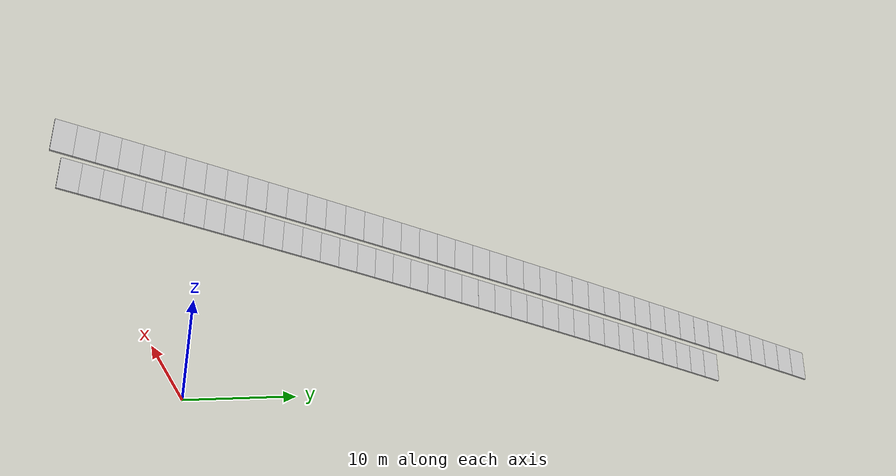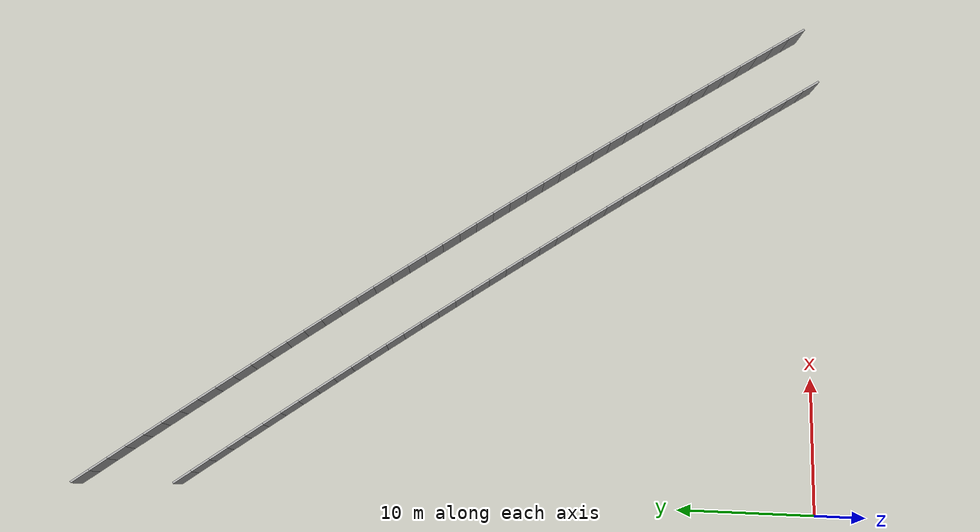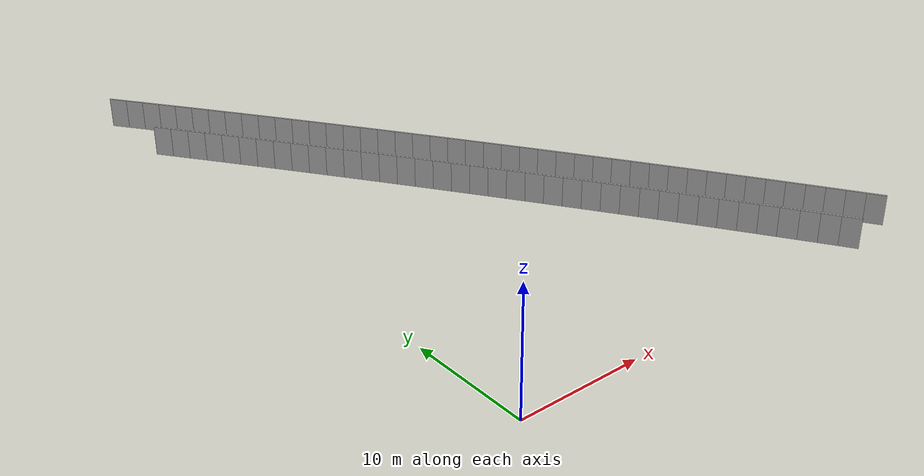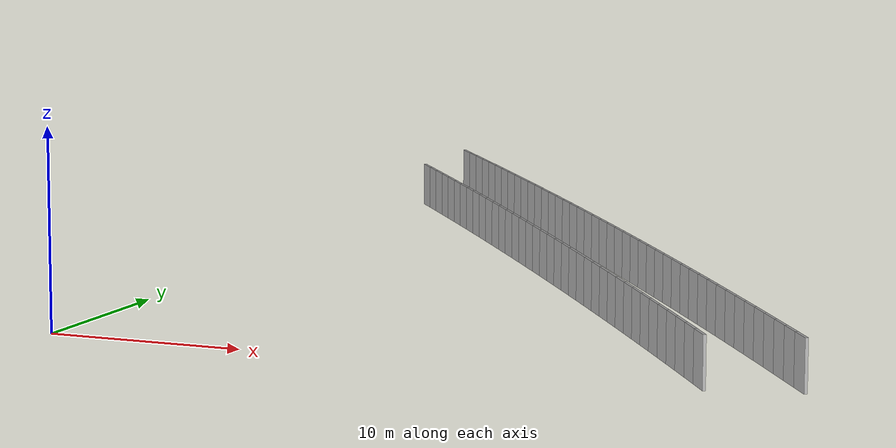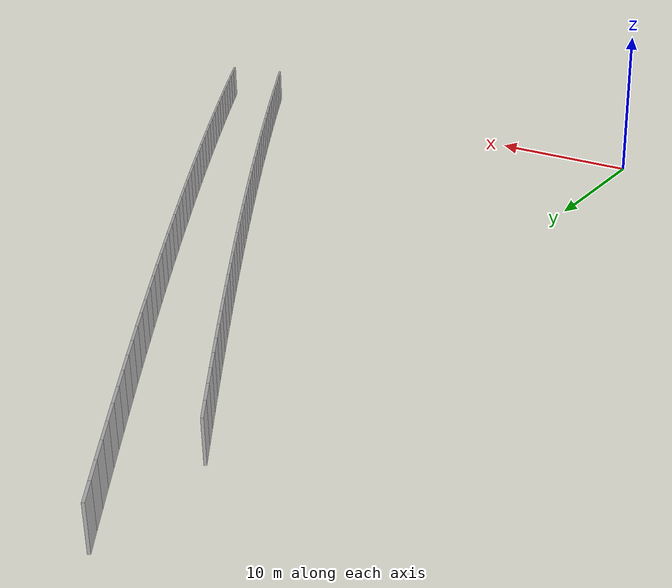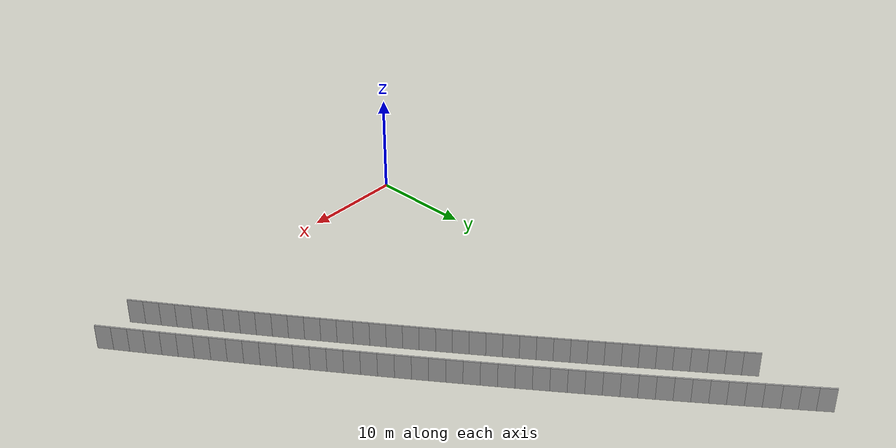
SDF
<?xml version="1.0" ?>
<sdf version="1.6">
  <model name="sps_2119">
    <pose frame="">0 0 0 0 -0 0</pose>
    <static>1</static>
    <self_collide>0</self_collide>
    <allow_auto_disable>0</allow_auto_disable>
    <link name="Wall10325">
      <kinematic>0</kinematic>
      <gravity>1</gravity>
      <self_collide>0</self_collide>
      <collision name="collision">
        <geometry>
          <box>
            <size>1.49652 0.15 2.5</size>
          </box>
        </geometry>
        <pose frame="">0 0 0 0 -0 0</pose>
      </collision>
      <visual name="visual">
        <geometry>
          <box>
            <size>1.49652 0.15 2.5</size>
          </box>
        </geometry>
        <pose frame="">0 0 0 0 -0 0</pose>
        <cast_shadows>1</cast_shadows>
        <transparency>0.0</transparency>
      </visual>
      <pose frame="">32.3198 0.0690145 1.25 0 -0 2.14588</pose>
    </link>
    <link name="Wall10326">
      <kinematic>0</kinematic>
      <gravity>1</gravity>
      <self_collide>0</self_collide>
      <collision name="collision">
        <geometry>
          <box>
            <size>1.49657 0.15 2.5</size>
          </box>
        </geometry>
        <pose frame="">0 0 0 0 -0 0</pose>
      </collision>
      <visual name="visual">
        <geometry>
          <box>
            <size>1.49657 0.15 2.5</size>
          </box>
        </geometry>
        <pose frame="">0 0 0 0 -0 0</pose>
        <cast_shadows>1</cast_shadows>
        <transparency>0.0</transparency>
      </visual>
      <pose frame="">31.5048 1.32411 1.25 0 -0 2.14766</pose>
    </link>
    <link name="Wall10327">
      <kinematic>0</kinematic>
      <gravity>1</gravity>
      <self_collide>0</self_collide>
      <collision name="collision">
        <geometry>
          <box>
            <size>1.49646 0.15 2.5</size>
          </box>
        </geometry>
        <pose frame="">0 0 0 0 -0 0</pose>
      </collision>
      <visual name="visual">
        <geometry>
          <box>
            <size>1.49646 0.15 2.5</size>
          </box>
        </geometry>
        <pose frame="">0 0 0 0 -0 0</pose>
        <cast_shadows>1</cast_shadows>
        <transparency>0.0</transparency>
      </visual>
      <pose frame="">30.6876 2.5778 1.25 0 -0 2.14926</pose>
    </link>
    <link name="Wall10328">
      <kinematic>0</kinematic>
      <gravity>1</gravity>
      <self_collide>0</self_collide>
      <collision name="collision">
        <geometry>
          <box>
            <size>1.49644 0.15 2.5</size>
          </box>
        </geometry>
        <pose frame="">0 0 0 0 -0 0</pose>
      </collision>
      <visual name="visual">
        <geometry>
          <box>
            <size>1.49644 0.15 2.5</size>
          </box>
        </geometry>
        <pose frame="">0 0 0 0 -0 0</pose>
        <cast_shadows>1</cast_shadows>
        <transparency>0.0</transparency>
      </visual>
      <pose frame="">29.8685 3.83018 1.25 0 -0 2.15073</pose>
    </link>
    <link name="Wall10329">
      <kinematic>0</kinematic>
      <gravity>1</gravity>
      <self_collide>0</self_collide>
      <collision name="collision">
        <geometry>
          <box>
            <size>1.49658 0.15 2.5</size>
          </box>
        </geometry>
        <pose frame="">0 0 0 0 -0 0</pose>
      </collision>
      <visual name="visual">
        <geometry>
          <box>
            <size>1.49658 0.15 2.5</size>
          </box>
        </geometry>
        <pose frame="">0 0 0 0 -0 0</pose>
        <cast_shadows>1</cast_shadows>
        <transparency>0.0</transparency>
      </visual>
      <pose frame="">29.0474 5.08137 1.25 0 -0 2.15228</pose>
    </link>
    <link name="Wall10330">
      <kinematic>0</kinematic>
      <gravity>1</gravity>
      <self_collide>0</self_collide>
      <collision name="collision">
        <geometry>
          <box>
            <size>1.49648 0.15 2.5</size>
          </box>
        </geometry>
        <pose frame="">0 0 0 0 -0 0</pose>
      </collision>
      <visual name="visual">
        <geometry>
          <box>
            <size>1.49648 0.15 2.5</size>
          </box>
        </geometry>
        <pose frame="">0 0 0 0 -0 0</pose>
        <cast_shadows>1</cast_shadows>
        <transparency>0.0</transparency>
      </visual>
      <pose frame="">28.2244 6.33128 1.25 0 -0 2.15389</pose>
    </link>
    <link name="Wall10331">
      <kinematic>0</kinematic>
      <gravity>1</gravity>
      <self_collide>0</self_collide>
      <collision name="collision">
        <geometry>
          <box>
            <size>1.49655 0.15 2.5</size>
          </box>
        </geometry>
        <pose frame="">0 0 0 0 -0 0</pose>
      </collision>
      <visual name="visual">
        <geometry>
          <box>
            <size>1.49655 0.15 2.5</size>
          </box>
        </geometry>
        <pose frame="">0 0 0 0 -0 0</pose>
        <cast_shadows>1</cast_shadows>
        <transparency>0.0</transparency>
      </visual>
      <pose frame="">27.3993 7.57979 1.25 0 -0 2.15567</pose>
    </link>
    <link name="Wall10332">
      <kinematic>0</kinematic>
      <gravity>1</gravity>
      <self_collide>0</self_collide>
      <collision name="collision">
        <geometry>
          <box>
            <size>1.49651 0.15 2.5</size>
          </box>
        </geometry>
        <pose frame="">0 0 0 0 -0 0</pose>
      </collision>
      <visual name="visual">
        <geometry>
          <box>
            <size>1.49651 0.15 2.5</size>
          </box>
        </geometry>
        <pose frame="">0 0 0 0 -0 0</pose>
        <cast_shadows>1</cast_shadows>
        <transparency>0.0</transparency>
      </visual>
      <pose frame="">26.5722 8.82698 1.25 0 -0 2.1571</pose>
    </link>
    <link name="Wall10333">
      <kinematic>0</kinematic>
      <gravity>1</gravity>
      <self_collide>0</self_collide>
      <collision name="collision">
        <geometry>
          <box>
            <size>1.49648 0.15 2.5</size>
          </box>
        </geometry>
        <pose frame="">0 0 0 0 -0 0</pose>
      </collision>
      <visual name="visual">
        <geometry>
          <box>
            <size>1.49648 0.15 2.5</size>
          </box>
        </geometry>
        <pose frame="">0 0 0 0 -0 0</pose>
        <cast_shadows>1</cast_shadows>
        <transparency>0.0</transparency>
      </visual>
      <pose frame="">25.7432 10.0729 1.25 0 -0 2.15869</pose>
    </link>
    <link name="Wall10334">
      <kinematic>0</kinematic>
      <gravity>1</gravity>
      <self_collide>0</self_collide>
      <collision name="collision">
        <geometry>
          <box>
            <size>1.49656 0.15 2.5</size>
          </box>
        </geometry>
        <pose frame="">0 0 0 0 -0 0</pose>
      </collision>
      <visual name="visual">
        <geometry>
          <box>
            <size>1.49656 0.15 2.5</size>
          </box>
        </geometry>
        <pose frame="">0 0 0 0 -0 0</pose>
        <cast_shadows>1</cast_shadows>
        <transparency>0.0</transparency>
      </visual>
      <pose frame="">24.9123 11.3175 1.25 0 -0 2.16031</pose>
    </link>
    <link name="Wall10335">
      <kinematic>0</kinematic>
      <gravity>1</gravity>
      <self_collide>0</self_collide>
      <collision name="collision">
        <geometry>
          <box>
            <size>1.49628 0.15 2.5</size>
          </box>
        </geometry>
        <pose frame="">0 0 0 0 -0 0</pose>
      </collision>
      <visual name="visual">
        <geometry>
          <box>
            <size>1.49628 0.15 2.5</size>
          </box>
        </geometry>
        <pose frame="">0 0 0 0 -0 0</pose>
        <cast_shadows>1</cast_shadows>
        <transparency>0.0</transparency>
      </visual>
      <pose frame="">24.0793 12.5607 1.25 0 -0 2.16186</pose>
    </link>
    <link name="Wall10336">
      <kinematic>0</kinematic>
      <gravity>1</gravity>
      <self_collide>0</self_collide>
      <collision name="collision">
        <geometry>
          <box>
            <size>1.49665 0.15 2.5</size>
          </box>
        </geometry>
        <pose frame="">0 0 0 0 -0 0</pose>
      </collision>
      <visual name="visual">
        <geometry>
          <box>
            <size>1.49665 0.15 2.5</size>
          </box>
        </geometry>
        <pose frame="">0 0 0 0 -0 0</pose>
        <cast_shadows>1</cast_shadows>
        <transparency>0.0</transparency>
      </visual>
      <pose frame="">23.2444 13.8026 1.25 0 -0 2.16347</pose>
    </link>
    <link name="Wall10337">
      <kinematic>0</kinematic>
      <gravity>1</gravity>
      <self_collide>0</self_collide>
      <collision name="collision">
        <geometry>
          <box>
            <size>1.49606 0.15 2.5</size>
          </box>
        </geometry>
        <pose frame="">0 0 0 0 -0 0</pose>
      </collision>
      <visual name="visual">
        <geometry>
          <box>
            <size>1.49606 0.15 2.5</size>
          </box>
        </geometry>
        <pose frame="">0 0 0 0 -0 0</pose>
        <cast_shadows>1</cast_shadows>
        <transparency>0.0</transparency>
      </visual>
      <pose frame="">22.4073 15.0429 1.25 0 -0 2.16551</pose>
    </link>
    <link name="Wall10338">
      <kinematic>0</kinematic>
      <gravity>1</gravity>
      <self_collide>0</self_collide>
      <collision name="collision">
        <geometry>
          <box>
            <size>1.49644 0.15 2.5</size>
          </box>
        </geometry>
        <pose frame="">0 0 0 0 -0 0</pose>
      </collision>
      <visual name="visual">
        <geometry>
          <box>
            <size>1.49644 0.15 2.5</size>
          </box>
        </geometry>
        <pose frame="">0 0 0 0 -0 0</pose>
        <cast_shadows>1</cast_shadows>
        <transparency>0.0</transparency>
      </visual>
      <pose frame="">21.5684 16.2818 1.25 0 -0 2.16662</pose>
    </link>
    <link name="Wall10339">
      <kinematic>0</kinematic>
      <gravity>1</gravity>
      <self_collide>0</self_collide>
      <collision name="collision">
        <geometry>
          <box>
            <size>1.49671 0.15 2.5</size>
          </box>
        </geometry>
        <pose frame="">0 0 0 0 -0 0</pose>
      </collision>
      <visual name="visual">
        <geometry>
          <box>
            <size>1.49671 0.15 2.5</size>
          </box>
        </geometry>
        <pose frame="">0 0 0 0 -0 0</pose>
        <cast_shadows>1</cast_shadows>
        <transparency>0.0</transparency>
      </visual>
      <pose frame="">20.7275 17.5198 1.25 0 -0 2.16827</pose>
    </link>
    <link name="Wall10340">
      <kinematic>0</kinematic>
      <gravity>1</gravity>
      <self_collide>0</self_collide>
      <collision name="collision">
        <geometry>
          <box>
            <size>1.49654 0.15 2.5</size>
          </box>
        </geometry>
        <pose frame="">0 0 0 0 -0 0</pose>
      </collision>
      <visual name="visual">
        <geometry>
          <box>
            <size>1.49654 0.15 2.5</size>
          </box>
        </geometry>
        <pose frame="">0 0 0 0 -0 0</pose>
        <cast_shadows>1</cast_shadows>
        <transparency>0.0</transparency>
      </visual>
      <pose frame="">19.8846 18.7565 1.25 0 -0 2.16983</pose>
    </link>
    <link name="Wall10341">
      <kinematic>0</kinematic>
      <gravity>1</gravity>
      <self_collide>0</self_collide>
      <collision name="collision">
        <geometry>
          <box>
            <size>1.49656 0.15 2.5</size>
          </box>
        </geometry>
        <pose frame="">0 0 0 0 -0 0</pose>
      </collision>
      <visual name="visual">
        <geometry>
          <box>
            <size>1.49656 0.15 2.5</size>
          </box>
        </geometry>
        <pose frame="">0 0 0 0 -0 0</pose>
        <cast_shadows>1</cast_shadows>
        <transparency>0.0</transparency>
      </visual>
      <pose frame="">19.0398 19.9918 1.25 0 -0 2.17145</pose>
    </link>
    <link name="Wall10342">
      <kinematic>0</kinematic>
      <gravity>1</gravity>
      <self_collide>0</self_collide>
      <collision name="collision">
        <geometry>
          <box>
            <size>1.49641 0.15 2.5</size>
          </box>
        </geometry>
        <pose frame="">0 0 0 0 -0 0</pose>
      </collision>
      <visual name="visual">
        <geometry>
          <box>
            <size>1.49641 0.15 2.5</size>
          </box>
        </geometry>
        <pose frame="">0 0 0 0 -0 0</pose>
        <cast_shadows>1</cast_shadows>
        <transparency>0.0</transparency>
      </visual>
      <pose frame="">18.193 21.2257 1.25 0 -0 2.17295</pose>
    </link>
    <link name="Wall10343">
      <kinematic>0</kinematic>
      <gravity>1</gravity>
      <self_collide>0</self_collide>
      <collision name="collision">
        <geometry>
          <box>
            <size>1.49654 0.15 2.5</size>
          </box>
        </geometry>
        <pose frame="">0 0 0 0 -0 0</pose>
      </collision>
      <visual name="visual">
        <geometry>
          <box>
            <size>1.49654 0.15 2.5</size>
          </box>
        </geometry>
        <pose frame="">0 0 0 0 -0 0</pose>
        <cast_shadows>1</cast_shadows>
        <transparency>0.0</transparency>
      </visual>
      <pose frame="">17.3444 22.4583 1.25 0 -0 2.17452</pose>
    </link>
    <link name="Wall10344">
      <kinematic>0</kinematic>
      <gravity>1</gravity>
      <self_collide>0</self_collide>
      <collision name="collision">
        <geometry>
          <box>
            <size>1.4965 0.15 2.5</size>
          </box>
        </geometry>
        <pose frame="">0 0 0 0 -0 0</pose>
      </collision>
      <visual name="visual">
        <geometry>
          <box>
            <size>1.4965 0.15 2.5</size>
          </box>
        </geometry>
        <pose frame="">0 0 0 0 -0 0</pose>
        <cast_shadows>1</cast_shadows>
        <transparency>0.0</transparency>
      </visual>
      <pose frame="">16.4939 23.6896 1.25 0 -0 2.17613</pose>
    </link>
    <link name="Wall10345">
      <kinematic>0</kinematic>
      <gravity>1</gravity>
      <self_collide>0</self_collide>
      <collision name="collision">
        <geometry>
          <box>
            <size>1.49653 0.15 2.5</size>
          </box>
        </geometry>
        <pose frame="">0 0 0 0 -0 0</pose>
      </collision>
      <visual name="visual">
        <geometry>
          <box>
            <size>1.49653 0.15 2.5</size>
          </box>
        </geometry>
        <pose frame="">0 0 0 0 -0 0</pose>
        <cast_shadows>1</cast_shadows>
        <transparency>0.0</transparency>
      </visual>
      <pose frame="">15.6413 24.9195 1.25 0 -0 2.1778</pose>
    </link>
    <link name="Wall10346">
      <kinematic>0</kinematic>
      <gravity>1</gravity>
      <self_collide>0</self_collide>
      <collision name="collision">
        <geometry>
          <box>
            <size>1.49659 0.15 2.5</size>
          </box>
        </geometry>
        <pose frame="">0 0 0 0 -0 0</pose>
      </collision>
      <visual name="visual">
        <geometry>
          <box>
            <size>1.49659 0.15 2.5</size>
          </box>
        </geometry>
        <pose frame="">0 0 0 0 -0 0</pose>
        <cast_shadows>1</cast_shadows>
        <transparency>0.0</transparency>
      </visual>
      <pose frame="">14.7867 26.1481 1.25 0 -0 2.17922</pose>
    </link>
    <link name="Wall10347">
      <kinematic>0</kinematic>
      <gravity>1</gravity>
      <self_collide>0</self_collide>
      <collision name="collision">
        <geometry>
          <box>
            <size>1.49655 0.15 2.5</size>
          </box>
        </geometry>
        <pose frame="">0 0 0 0 -0 0</pose>
      </collision>
      <visual name="visual">
        <geometry>
          <box>
            <size>1.49655 0.15 2.5</size>
          </box>
        </geometry>
        <pose frame="">0 0 0 0 -0 0</pose>
        <cast_shadows>1</cast_shadows>
        <transparency>0.0</transparency>
      </visual>
      <pose frame="">13.9304 27.3754 1.25 0 -0 2.18082</pose>
    </link>
    <link name="Wall10348">
      <kinematic>0</kinematic>
      <gravity>1</gravity>
      <self_collide>0</self_collide>
      <collision name="collision">
        <geometry>
          <box>
            <size>1.4964 0.15 2.5</size>
          </box>
        </geometry>
        <pose frame="">0 0 0 0 -0 0</pose>
      </collision>
      <visual name="visual">
        <geometry>
          <box>
            <size>1.4964 0.15 2.5</size>
          </box>
        </geometry>
        <pose frame="">0 0 0 0 -0 0</pose>
        <cast_shadows>1</cast_shadows>
        <transparency>0.0</transparency>
      </visual>
      <pose frame="">13.0721 28.6013 1.25 0 -0 2.18239</pose>
    </link>
    <link name="Wall10349">
      <kinematic>0</kinematic>
      <gravity>1</gravity>
      <self_collide>0</self_collide>
      <collision name="collision">
        <geometry>
          <box>
            <size>1.49645 0.15 2.5</size>
          </box>
        </geometry>
        <pose frame="">0 0 0 0 -0 0</pose>
      </collision>
      <visual name="visual">
        <geometry>
          <box>
            <size>1.49645 0.15 2.5</size>
          </box>
        </geometry>
        <pose frame="">0 0 0 0 -0 0</pose>
        <cast_shadows>1</cast_shadows>
        <transparency>0.0</transparency>
      </visual>
      <pose frame="">12.2118 29.8257 1.25 0 -0 2.18421</pose>
    </link>
    <link name="Wall10350">
      <kinematic>0</kinematic>
      <gravity>1</gravity>
      <self_collide>0</self_collide>
      <collision name="collision">
        <geometry>
          <box>
            <size>1.49639 0.15 2.5</size>
          </box>
        </geometry>
        <pose frame="">0 0 0 0 -0 0</pose>
      </collision>
      <visual name="visual">
        <geometry>
          <box>
            <size>1.49639 0.15 2.5</size>
          </box>
        </geometry>
        <pose frame="">0 0 0 0 -0 0</pose>
        <cast_shadows>1</cast_shadows>
        <transparency>0.0</transparency>
      </visual>
      <pose frame="">11.3494 31.0487 1.25 0 -0 2.18564</pose>
    </link>
    <link name="Wall10351">
      <kinematic>0</kinematic>
      <gravity>1</gravity>
      <self_collide>0</self_collide>
      <collision name="collision">
        <geometry>
          <box>
            <size>1.49669 0.15 2.5</size>
          </box>
        </geometry>
        <pose frame="">0 0 0 0 -0 0</pose>
      </collision>
      <visual name="visual">
        <geometry>
          <box>
            <size>1.49669 0.15 2.5</size>
          </box>
        </geometry>
        <pose frame="">0 0 0 0 -0 0</pose>
        <cast_shadows>1</cast_shadows>
        <transparency>0.0</transparency>
      </visual>
      <pose frame="">10.4853 32.2705 1.25 0 -0 2.18719</pose>
    </link>
    <link name="Wall10352">
      <kinematic>0</kinematic>
      <gravity>1</gravity>
      <self_collide>0</self_collide>
      <collision name="collision">
        <geometry>
          <box>
            <size>1.49637 0.15 2.5</size>
          </box>
        </geometry>
        <pose frame="">0 0 0 0 -0 0</pose>
      </collision>
      <visual name="visual">
        <geometry>
          <box>
            <size>1.49637 0.15 2.5</size>
          </box>
        </geometry>
        <pose frame="">0 0 0 0 -0 0</pose>
        <cast_shadows>1</cast_shadows>
        <transparency>0.0</transparency>
      </visual>
      <pose frame="">9.61913 33.4909 1.25 0 -0 2.18879</pose>
    </link>
    <link name="Wall10353">
      <kinematic>0</kinematic>
      <gravity>1</gravity>
      <self_collide>0</self_collide>
      <collision name="collision">
        <geometry>
          <box>
            <size>1.49651 0.15 2.5</size>
          </box>
        </geometry>
        <pose frame="">0 0 0 0 -0 0</pose>
      </collision>
      <visual name="visual">
        <geometry>
          <box>
            <size>1.49651 0.15 2.5</size>
          </box>
        </geometry>
        <pose frame="">0 0 0 0 -0 0</pose>
        <cast_shadows>1</cast_shadows>
        <transparency>0.0</transparency>
      </visual>
      <pose frame="">8.75115 34.7099 1.25 0 -0 2.19033</pose>
    </link>
    <link name="Wall10354">
      <kinematic>0</kinematic>
      <gravity>1</gravity>
      <self_collide>0</self_collide>
      <collision name="collision">
        <geometry>
          <box>
            <size>1.49658 0.15 2.5</size>
          </box>
        </geometry>
        <pose frame="">0 0 0 0 -0 0</pose>
      </collision>
      <visual name="visual">
        <geometry>
          <box>
            <size>1.49658 0.15 2.5</size>
          </box>
        </geometry>
        <pose frame="">0 0 0 0 -0 0</pose>
        <cast_shadows>1</cast_shadows>
        <transparency>0.0</transparency>
      </visual>
      <pose frame="">7.88116 35.9276 1.25 0 -0 2.192</pose>
    </link>
    <link name="Wall10355">
      <kinematic>0</kinematic>
      <gravity>1</gravity>
      <self_collide>0</self_collide>
      <collision name="collision">
        <geometry>
          <box>
            <size>1.49652 0.15 2.5</size>
          </box>
        </geometry>
        <pose frame="">0 0 0 0 -0 0</pose>
      </collision>
      <visual name="visual">
        <geometry>
          <box>
            <size>1.49652 0.15 2.5</size>
          </box>
        </geometry>
        <pose frame="">0 0 0 0 -0 0</pose>
        <cast_shadows>1</cast_shadows>
        <transparency>0.0</transparency>
      </visual>
      <pose frame="">7.00924 37.1439 1.25 0 -0 2.19349</pose>
    </link>
    <link name="Wall10356">
      <kinematic>0</kinematic>
      <gravity>1</gravity>
      <self_collide>0</self_collide>
      <collision name="collision">
        <geometry>
          <box>
            <size>1.49661 0.15 2.5</size>
          </box>
        </geometry>
        <pose frame="">0 0 0 0 -0 0</pose>
      </collision>
      <visual name="visual">
        <geometry>
          <box>
            <size>1.49661 0.15 2.5</size>
          </box>
        </geometry>
        <pose frame="">0 0 0 0 -0 0</pose>
        <cast_shadows>1</cast_shadows>
        <transparency>0.0</transparency>
      </visual>
      <pose frame="">6.13534 38.3588 1.25 0 -0 2.19525</pose>
    </link>
    <link name="Wall10357">
      <kinematic>0</kinematic>
      <gravity>1</gravity>
      <self_collide>0</self_collide>
      <collision name="collision">
        <geometry>
          <box>
            <size>1.4964 0.15 2.5</size>
          </box>
        </geometry>
        <pose frame="">0 0 0 0 -0 0</pose>
      </collision>
      <visual name="visual">
        <geometry>
          <box>
            <size>1.4964 0.15 2.5</size>
          </box>
        </geometry>
        <pose frame="">0 0 0 0 -0 0</pose>
        <cast_shadows>1</cast_shadows>
        <transparency>0.0</transparency>
      </visual>
      <pose frame="">5.25954 39.5723 1.25 0 -0 2.19666</pose>
    </link>
    <link name="Wall10358">
      <kinematic>0</kinematic>
      <gravity>1</gravity>
      <self_collide>0</self_collide>
      <collision name="collision">
        <geometry>
          <box>
            <size>1.49649 0.15 2.5</size>
          </box>
        </geometry>
        <pose frame="">0 0 0 0 -0 0</pose>
      </collision>
      <visual name="visual">
        <geometry>
          <box>
            <size>1.49649 0.15 2.5</size>
          </box>
        </geometry>
        <pose frame="">0 0 0 0 -0 0</pose>
        <cast_shadows>1</cast_shadows>
        <transparency>0.0</transparency>
      </visual>
      <pose frame="">4.38195 40.7844 1.25 0 -0 2.19828</pose>
    </link>
    <link name="Wall10359">
      <kinematic>0</kinematic>
      <gravity>1</gravity>
      <self_collide>0</self_collide>
      <collision name="collision">
        <geometry>
          <box>
            <size>1.49654 0.15 2.5</size>
          </box>
        </geometry>
        <pose frame="">0 0 0 0 -0 0</pose>
      </collision>
      <visual name="visual">
        <geometry>
          <box>
            <size>1.49654 0.15 2.5</size>
          </box>
        </geometry>
        <pose frame="">0 0 0 0 -0 0</pose>
        <cast_shadows>1</cast_shadows>
        <transparency>0.0</transparency>
      </visual>
      <pose frame="">3.50234 41.9951 1.25 0 -0 2.19992</pose>
    </link>
    <link name="Wall10360">
      <kinematic>0</kinematic>
      <gravity>1</gravity>
      <self_collide>0</self_collide>
      <collision name="collision">
        <geometry>
          <box>
            <size>1.49651 0.15 2.5</size>
          </box>
        </geometry>
        <pose frame="">0 0 0 0 -0 0</pose>
      </collision>
      <visual name="visual">
        <geometry>
          <box>
            <size>1.49651 0.15 2.5</size>
          </box>
        </geometry>
        <pose frame="">0 0 0 0 -0 0</pose>
        <cast_shadows>1</cast_shadows>
        <transparency>0.0</transparency>
      </visual>
      <pose frame="">2.62075 43.2044 1.25 0 -0 2.20155</pose>
    </link>
    <link name="Wall10361">
      <kinematic>0</kinematic>
      <gravity>1</gravity>
      <self_collide>0</self_collide>
      <collision name="collision">
        <geometry>
          <box>
            <size>1.49651 0.15 2.5</size>
          </box>
        </geometry>
        <pose frame="">0 0 0 0 -0 0</pose>
      </collision>
      <visual name="visual">
        <geometry>
          <box>
            <size>1.49651 0.15 2.5</size>
          </box>
        </geometry>
        <pose frame="">0 0 0 0 -0 0</pose>
        <cast_shadows>1</cast_shadows>
        <transparency>0.0</transparency>
      </visual>
      <pose frame="">1.73727 44.4123 1.25 0 -0 2.20306</pose>
    </link>
    <link name="Wall10362">
      <kinematic>0</kinematic>
      <gravity>1</gravity>
      <self_collide>0</self_collide>
      <collision name="collision">
        <geometry>
          <box>
            <size>1.49646 0.15 2.5</size>
          </box>
        </geometry>
        <pose frame="">0 0 0 0 -0 0</pose>
      </collision>
      <visual name="visual">
        <geometry>
          <box>
            <size>1.49646 0.15 2.5</size>
          </box>
        </geometry>
        <pose frame="">0 0 0 0 -0 0</pose>
        <cast_shadows>1</cast_shadows>
        <transparency>0.0</transparency>
      </visual>
      <pose frame="">0.851951 45.6188 1.25 0 -0 2.20461</pose>
    </link>
    <link name="Wall10921">
      <kinematic>0</kinematic>
      <gravity>1</gravity>
      <self_collide>0</self_collide>
      <collision name="collision">
        <geometry>
          <box>
            <size>1.5031 0.15 2.5</size>
          </box>
        </geometry>
        <pose frame="">0 0 0 0 -0 0</pose>
      </collision>
      <visual name="visual">
        <geometry>
          <box>
            <size>1.5031 0.15 2.5</size>
          </box>
        </geometry>
        <pose frame="">0 0 0 0 -0 0</pose>
        <cast_shadows>1</cast_shadows>
        <transparency>0.0</transparency>
      </visual>
      <pose frame="">36.6104 1.05989 1.25 0 -0 2.1445</pose>
    </link>
    <link name="Wall10922">
      <kinematic>0</kinematic>
      <gravity>1</gravity>
      <self_collide>0</self_collide>
      <collision name="collision">
        <geometry>
          <box>
            <size>1.50312 0.15 2.5</size>
          </box>
        </geometry>
        <pose frame="">0 0 0 0 -0 0</pose>
      </collision>
      <visual name="visual">
        <geometry>
          <box>
            <size>1.50312 0.15 2.5</size>
          </box>
        </geometry>
        <pose frame="">0 0 0 0 -0 0</pose>
        <cast_shadows>1</cast_shadows>
        <transparency>0.0</transparency>
      </visual>
      <pose frame="">35.7936 2.3217 1.25 0 -0 2.14608</pose>
    </link>
    <link name="Wall10923">
      <kinematic>0</kinematic>
      <gravity>1</gravity>
      <self_collide>0</self_collide>
      <collision name="collision">
        <geometry>
          <box>
            <size>1.50324 0.15 2.5</size>
          </box>
        </geometry>
        <pose frame="">0 0 0 0 -0 0</pose>
      </collision>
      <visual name="visual">
        <geometry>
          <box>
            <size>1.50324 0.15 2.5</size>
          </box>
        </geometry>
        <pose frame="">0 0 0 0 -0 0</pose>
        <cast_shadows>1</cast_shadows>
        <transparency>0.0</transparency>
      </visual>
      <pose frame="">34.9748 3.58229 1.25 0 -0 2.14763</pose>
    </link>
    <link name="Wall10924">
      <kinematic>0</kinematic>
      <gravity>1</gravity>
      <self_collide>0</self_collide>
      <collision name="collision">
        <geometry>
          <box>
            <size>1.50288 0.15 2.5</size>
          </box>
        </geometry>
        <pose frame="">0 0 0 0 -0 0</pose>
      </collision>
      <visual name="visual">
        <geometry>
          <box>
            <size>1.50288 0.15 2.5</size>
          </box>
        </geometry>
        <pose frame="">0 0 0 0 -0 0</pose>
        <cast_shadows>1</cast_shadows>
        <transparency>0.0</transparency>
      </visual>
      <pose frame="">34.154 4.84151 1.25 0 -0 2.14919</pose>
    </link>
    <link name="Wall10925">
      <kinematic>0</kinematic>
      <gravity>1</gravity>
      <self_collide>0</self_collide>
      <collision name="collision">
        <geometry>
          <box>
            <size>1.50296 0.15 2.5</size>
          </box>
        </geometry>
        <pose frame="">0 0 0 0 -0 0</pose>
      </collision>
      <visual name="visual">
        <geometry>
          <box>
            <size>1.50296 0.15 2.5</size>
          </box>
        </geometry>
        <pose frame="">0 0 0 0 -0 0</pose>
        <cast_shadows>1</cast_shadows>
        <transparency>0.0</transparency>
      </visual>
      <pose frame="">33.3314 6.09932 1.25 0 -0 2.15076</pose>
    </link>
    <link name="Wall10926">
      <kinematic>0</kinematic>
      <gravity>1</gravity>
      <self_collide>0</self_collide>
      <collision name="collision">
        <geometry>
          <box>
            <size>1.50314 0.15 2.5</size>
          </box>
        </geometry>
        <pose frame="">0 0 0 0 -0 0</pose>
      </collision>
      <visual name="visual">
        <geometry>
          <box>
            <size>1.50314 0.15 2.5</size>
          </box>
        </geometry>
        <pose frame="">0 0 0 0 -0 0</pose>
        <cast_shadows>1</cast_shadows>
        <transparency>0.0</transparency>
      </visual>
      <pose frame="">32.5067 7.35591 1.25 0 -0 2.15242</pose>
    </link>
    <link name="Wall10927">
      <kinematic>0</kinematic>
      <gravity>1</gravity>
      <self_collide>0</self_collide>
      <collision name="collision">
        <geometry>
          <box>
            <size>1.50315 0.15 2.5</size>
          </box>
        </geometry>
        <pose frame="">0 0 0 0 -0 0</pose>
      </collision>
      <visual name="visual">
        <geometry>
          <box>
            <size>1.50315 0.15 2.5</size>
          </box>
        </geometry>
        <pose frame="">0 0 0 0 -0 0</pose>
        <cast_shadows>1</cast_shadows>
        <transparency>0.0</transparency>
      </visual>
      <pose frame="">31.68 8.61131 1.25 0 -0 2.15383</pose>
    </link>
    <link name="Wall10928">
      <kinematic>0</kinematic>
      <gravity>1</gravity>
      <self_collide>0</self_collide>
      <collision name="collision">
        <geometry>
          <box>
            <size>1.50314 0.15 2.5</size>
          </box>
        </geometry>
        <pose frame="">0 0 0 0 -0 0</pose>
      </collision>
      <visual name="visual">
        <geometry>
          <box>
            <size>1.50314 0.15 2.5</size>
          </box>
        </geometry>
        <pose frame="">0 0 0 0 -0 0</pose>
        <cast_shadows>1</cast_shadows>
        <transparency>0.0</transparency>
      </visual>
      <pose frame="">30.8514 9.8654 1.25 0 -0 2.15559</pose>
    </link>
    <link name="Wall10929">
      <kinematic>0</kinematic>
      <gravity>1</gravity>
      <self_collide>0</self_collide>
      <collision name="collision">
        <geometry>
          <box>
            <size>1.50303 0.15 2.5</size>
          </box>
        </geometry>
        <pose frame="">0 0 0 0 -0 0</pose>
      </collision>
      <visual name="visual">
        <geometry>
          <box>
            <size>1.50303 0.15 2.5</size>
          </box>
        </geometry>
        <pose frame="">0 0 0 0 -0 0</pose>
        <cast_shadows>1</cast_shadows>
        <transparency>0.0</transparency>
      </visual>
      <pose frame="">30.0207 11.1181 1.25 0 -0 2.1571</pose>
    </link>
    <link name="Wall10930">
      <kinematic>0</kinematic>
      <gravity>1</gravity>
      <self_collide>0</self_collide>
      <collision name="collision">
        <geometry>
          <box>
            <size>1.50298 0.15 2.5</size>
          </box>
        </geometry>
        <pose frame="">0 0 0 0 -0 0</pose>
      </collision>
      <visual name="visual">
        <geometry>
          <box>
            <size>1.50298 0.15 2.5</size>
          </box>
        </geometry>
        <pose frame="">0 0 0 0 -0 0</pose>
        <cast_shadows>1</cast_shadows>
        <transparency>0.0</transparency>
      </visual>
      <pose frame="">29.1881 12.3694 1.25 0 -0 2.15873</pose>
    </link>
    <link name="Wall10931">
      <kinematic>0</kinematic>
      <gravity>1</gravity>
      <self_collide>0</self_collide>
      <collision name="collision">
        <geometry>
          <box>
            <size>1.50308 0.15 2.5</size>
          </box>
        </geometry>
        <pose frame="">0 0 0 0 -0 0</pose>
      </collision>
      <visual name="visual">
        <geometry>
          <box>
            <size>1.50308 0.15 2.5</size>
          </box>
        </geometry>
        <pose frame="">0 0 0 0 -0 0</pose>
        <cast_shadows>1</cast_shadows>
        <transparency>0.0</transparency>
      </visual>
      <pose frame="">28.3534 13.6194 1.25 0 -0 2.1603</pose>
    </link>
    <link name="Wall10932">
      <kinematic>0</kinematic>
      <gravity>1</gravity>
      <self_collide>0</self_collide>
      <collision name="collision">
        <geometry>
          <box>
            <size>1.50268 0.15 2.5</size>
          </box>
        </geometry>
        <pose frame="">0 0 0 0 -0 0</pose>
      </collision>
      <visual name="visual">
        <geometry>
          <box>
            <size>1.50268 0.15 2.5</size>
          </box>
        </geometry>
        <pose frame="">0 0 0 0 -0 0</pose>
        <cast_shadows>1</cast_shadows>
        <transparency>0.0</transparency>
      </visual>
      <pose frame="">27.5165 14.8677 1.25 0 -0 2.16253</pose>
    </link>
    <link name="Wall10933">
      <kinematic>0</kinematic>
      <gravity>1</gravity>
      <self_collide>0</self_collide>
      <collision name="collision">
        <geometry>
          <box>
            <size>1.50316 0.15 2.5</size>
          </box>
        </geometry>
        <pose frame="">0 0 0 0 -0 0</pose>
      </collision>
      <visual name="visual">
        <geometry>
          <box>
            <size>1.50316 0.15 2.5</size>
          </box>
        </geometry>
        <pose frame="">0 0 0 0 -0 0</pose>
        <cast_shadows>1</cast_shadows>
        <transparency>0.0</transparency>
      </visual>
      <pose frame="">26.6776 16.1147 1.25 0 -0 2.16344</pose>
    </link>
    <link name="Wall10934">
      <kinematic>0</kinematic>
      <gravity>1</gravity>
      <self_collide>0</self_collide>
      <collision name="collision">
        <geometry>
          <box>
            <size>1.50294 0.15 2.5</size>
          </box>
        </geometry>
        <pose frame="">0 0 0 0 -0 0</pose>
      </collision>
      <visual name="visual">
        <geometry>
          <box>
            <size>1.50294 0.15 2.5</size>
          </box>
        </geometry>
        <pose frame="">0 0 0 0 -0 0</pose>
        <cast_shadows>1</cast_shadows>
        <transparency>0.0</transparency>
      </visual>
      <pose frame="">25.8371 17.3608 1.25 0 -0 2.16496</pose>
    </link>
    <link name="Wall10935">
      <kinematic>0</kinematic>
      <gravity>1</gravity>
      <self_collide>0</self_collide>
      <collision name="collision">
        <geometry>
          <box>
            <size>1.50325 0.15 2.5</size>
          </box>
        </geometry>
        <pose frame="">0 0 0 0 -0 0</pose>
      </collision>
      <visual name="visual">
        <geometry>
          <box>
            <size>1.50325 0.15 2.5</size>
          </box>
        </geometry>
        <pose frame="">0 0 0 0 -0 0</pose>
        <cast_shadows>1</cast_shadows>
        <transparency>0.0</transparency>
      </visual>
      <pose frame="">24.9947 18.6056 1.25 0 -0 2.16664</pose>
    </link>
    <link name="Wall10936">
      <kinematic>0</kinematic>
      <gravity>1</gravity>
      <self_collide>0</self_collide>
      <collision name="collision">
        <geometry>
          <box>
            <size>1.50293 0.15 2.5</size>
          </box>
        </geometry>
        <pose frame="">0 0 0 0 -0 0</pose>
      </collision>
      <visual name="visual">
        <geometry>
          <box>
            <size>1.50293 0.15 2.5</size>
          </box>
        </geometry>
        <pose frame="">0 0 0 0 -0 0</pose>
        <cast_shadows>1</cast_shadows>
        <transparency>0.0</transparency>
      </visual>
      <pose frame="">24.1501 19.849 1.25 0 -0 2.1682</pose>
    </link>
    <link name="Wall10937">
      <kinematic>0</kinematic>
      <gravity>1</gravity>
      <self_collide>0</self_collide>
      <collision name="collision">
        <geometry>
          <box>
            <size>1.5032 0.15 2.5</size>
          </box>
        </geometry>
        <pose frame="">0 0 0 0 -0 0</pose>
      </collision>
      <visual name="visual">
        <geometry>
          <box>
            <size>1.5032 0.15 2.5</size>
          </box>
        </geometry>
        <pose frame="">0 0 0 0 -0 0</pose>
        <cast_shadows>1</cast_shadows>
        <transparency>0.0</transparency>
      </visual>
      <pose frame="">23.3037 21.0911 1.25 0 -0 2.1697</pose>
    </link>
    <link name="Wall10938">
      <kinematic>0</kinematic>
      <gravity>1</gravity>
      <self_collide>0</self_collide>
      <collision name="collision">
        <geometry>
          <box>
            <size>1.50305 0.15 2.5</size>
          </box>
        </geometry>
        <pose frame="">0 0 0 0 -0 0</pose>
      </collision>
      <visual name="visual">
        <geometry>
          <box>
            <size>1.50305 0.15 2.5</size>
          </box>
        </geometry>
        <pose frame="">0 0 0 0 -0 0</pose>
        <cast_shadows>1</cast_shadows>
        <transparency>0.0</transparency>
      </visual>
      <pose frame="">22.4553 22.3319 1.25 0 -0 2.17135</pose>
    </link>
    <link name="Wall10939">
      <kinematic>0</kinematic>
      <gravity>1</gravity>
      <self_collide>0</self_collide>
      <collision name="collision">
        <geometry>
          <box>
            <size>1.50298 0.15 2.5</size>
          </box>
        </geometry>
        <pose frame="">0 0 0 0 -0 0</pose>
      </collision>
      <visual name="visual">
        <geometry>
          <box>
            <size>1.50298 0.15 2.5</size>
          </box>
        </geometry>
        <pose frame="">0 0 0 0 -0 0</pose>
        <cast_shadows>1</cast_shadows>
        <transparency>0.0</transparency>
      </visual>
      <pose frame="">21.605 23.5712 1.25 0 -0 2.173</pose>
    </link>
    <link name="Wall10940">
      <kinematic>0</kinematic>
      <gravity>1</gravity>
      <self_collide>0</self_collide>
      <collision name="collision">
        <geometry>
          <box>
            <size>1.50315 0.15 2.5</size>
          </box>
        </geometry>
        <pose frame="">0 0 0 0 -0 0</pose>
      </collision>
      <visual name="visual">
        <geometry>
          <box>
            <size>1.50315 0.15 2.5</size>
          </box>
        </geometry>
        <pose frame="">0 0 0 0 -0 0</pose>
        <cast_shadows>1</cast_shadows>
        <transparency>0.0</transparency>
      </visual>
      <pose frame="">20.7526 24.8092 1.25 0 -0 2.1746</pose>
    </link>
    <link name="Wall10941">
      <kinematic>0</kinematic>
      <gravity>1</gravity>
      <self_collide>0</self_collide>
      <collision name="collision">
        <geometry>
          <box>
            <size>1.50302 0.15 2.5</size>
          </box>
        </geometry>
        <pose frame="">0 0 0 0 -0 0</pose>
      </collision>
      <visual name="visual">
        <geometry>
          <box>
            <size>1.50302 0.15 2.5</size>
          </box>
        </geometry>
        <pose frame="">0 0 0 0 -0 0</pose>
        <cast_shadows>1</cast_shadows>
        <transparency>0.0</transparency>
      </visual>
      <pose frame="">19.8982 26.0459 1.25 0 -0 2.17604</pose>
    </link>
    <link name="Wall10942">
      <kinematic>0</kinematic>
      <gravity>1</gravity>
      <self_collide>0</self_collide>
      <collision name="collision">
        <geometry>
          <box>
            <size>1.50315 0.15 2.5</size>
          </box>
        </geometry>
        <pose frame="">0 0 0 0 -0 0</pose>
      </collision>
      <visual name="visual">
        <geometry>
          <box>
            <size>1.50315 0.15 2.5</size>
          </box>
        </geometry>
        <pose frame="">0 0 0 0 -0 0</pose>
        <cast_shadows>1</cast_shadows>
        <transparency>0.0</transparency>
      </visual>
      <pose frame="">19.042 27.2812 1.25 0 -0 2.17781</pose>
    </link>
    <link name="Wall10943">
      <kinematic>0</kinematic>
      <gravity>1</gravity>
      <self_collide>0</self_collide>
      <collision name="collision">
        <geometry>
          <box>
            <size>1.50296 0.15 2.5</size>
          </box>
        </geometry>
        <pose frame="">0 0 0 0 -0 0</pose>
      </collision>
      <visual name="visual">
        <geometry>
          <box>
            <size>1.50296 0.15 2.5</size>
          </box>
        </geometry>
        <pose frame="">0 0 0 0 -0 0</pose>
        <cast_shadows>1</cast_shadows>
        <transparency>0.0</transparency>
      </visual>
      <pose frame="">18.1836 28.5151 1.25 0 -0 2.17933</pose>
    </link>
    <link name="Wall10944">
      <kinematic>0</kinematic>
      <gravity>1</gravity>
      <self_collide>0</self_collide>
      <collision name="collision">
        <geometry>
          <box>
            <size>1.50321 0.15 2.5</size>
          </box>
        </geometry>
        <pose frame="">0 0 0 0 -0 0</pose>
      </collision>
      <visual name="visual">
        <geometry>
          <box>
            <size>1.50321 0.15 2.5</size>
          </box>
        </geometry>
        <pose frame="">0 0 0 0 -0 0</pose>
        <cast_shadows>1</cast_shadows>
        <transparency>0.0</transparency>
      </visual>
      <pose frame="">17.3234 29.7477 1.25 0 -0 2.18085</pose>
    </link>
    <link name="Wall10945">
      <kinematic>0</kinematic>
      <gravity>1</gravity>
      <self_collide>0</self_collide>
      <collision name="collision">
        <geometry>
          <box>
            <size>1.50282 0.15 2.5</size>
          </box>
        </geometry>
        <pose frame="">0 0 0 0 -0 0</pose>
      </collision>
      <visual name="visual">
        <geometry>
          <box>
            <size>1.50282 0.15 2.5</size>
          </box>
        </geometry>
        <pose frame="">0 0 0 0 -0 0</pose>
        <cast_shadows>1</cast_shadows>
        <transparency>0.0</transparency>
      </visual>
      <pose frame="">16.4614 30.9789 1.25 0 -0 2.18247</pose>
    </link>
    <link name="Wall10946">
      <kinematic>0</kinematic>
      <gravity>1</gravity>
      <self_collide>0</self_collide>
      <collision name="collision">
        <geometry>
          <box>
            <size>1.50322 0.15 2.5</size>
          </box>
        </geometry>
        <pose frame="">0 0 0 0 -0 0</pose>
      </collision>
      <visual name="visual">
        <geometry>
          <box>
            <size>1.50322 0.15 2.5</size>
          </box>
        </geometry>
        <pose frame="">0 0 0 0 -0 0</pose>
        <cast_shadows>1</cast_shadows>
        <transparency>0.0</transparency>
      </visual>
      <pose frame="">15.5973 32.2087 1.25 0 -0 2.18412</pose>
    </link>
    <link name="Wall10947">
      <kinematic>0</kinematic>
      <gravity>1</gravity>
      <self_collide>0</self_collide>
      <collision name="collision">
        <geometry>
          <box>
            <size>1.50305 0.15 2.5</size>
          </box>
        </geometry>
        <pose frame="">0 0 0 0 -0 0</pose>
      </collision>
      <visual name="visual">
        <geometry>
          <box>
            <size>1.50305 0.15 2.5</size>
          </box>
        </geometry>
        <pose frame="">0 0 0 0 -0 0</pose>
        <cast_shadows>1</cast_shadows>
        <transparency>0.0</transparency>
      </visual>
      <pose frame="">14.7311 33.4372 1.25 0 -0 2.18564</pose>
    </link>
    <link name="Wall10948">
      <kinematic>0</kinematic>
      <gravity>1</gravity>
      <self_collide>0</self_collide>
      <collision name="collision">
        <geometry>
          <box>
            <size>1.50303 0.15 2.5</size>
          </box>
        </geometry>
        <pose frame="">0 0 0 0 -0 0</pose>
      </collision>
      <visual name="visual">
        <geometry>
          <box>
            <size>1.50303 0.15 2.5</size>
          </box>
        </geometry>
        <pose frame="">0 0 0 0 -0 0</pose>
        <cast_shadows>1</cast_shadows>
        <transparency>0.0</transparency>
      </visual>
      <pose frame="">13.8632 34.6643 1.25 0 -0 2.18724</pose>
    </link>
    <link name="Wall10949">
      <kinematic>0</kinematic>
      <gravity>1</gravity>
      <self_collide>0</self_collide>
      <collision name="collision">
        <geometry>
          <box>
            <size>1.50314 0.15 2.5</size>
          </box>
        </geometry>
        <pose frame="">0 0 0 0 -0 0</pose>
      </collision>
      <visual name="visual">
        <geometry>
          <box>
            <size>1.50314 0.15 2.5</size>
          </box>
        </geometry>
        <pose frame="">0 0 0 0 -0 0</pose>
        <cast_shadows>1</cast_shadows>
        <transparency>0.0</transparency>
      </visual>
      <pose frame="">12.9933 35.8901 1.25 0 -0 2.18868</pose>
    </link>
    <link name="Wall10950">
      <kinematic>0</kinematic>
      <gravity>1</gravity>
      <self_collide>0</self_collide>
      <collision name="collision">
        <geometry>
          <box>
            <size>1.50297 0.15 2.5</size>
          </box>
        </geometry>
        <pose frame="">0 0 0 0 -0 0</pose>
      </collision>
      <visual name="visual">
        <geometry>
          <box>
            <size>1.50297 0.15 2.5</size>
          </box>
        </geometry>
        <pose frame="">0 0 0 0 -0 0</pose>
        <cast_shadows>1</cast_shadows>
        <transparency>0.0</transparency>
      </visual>
      <pose frame="">12.1215 37.1145 1.25 0 -0 2.19041</pose>
    </link>
    <link name="Wall10951">
      <kinematic>0</kinematic>
      <gravity>1</gravity>
      <self_collide>0</self_collide>
      <collision name="collision">
        <geometry>
          <box>
            <size>1.50305 0.15 2.5</size>
          </box>
        </geometry>
        <pose frame="">0 0 0 0 -0 0</pose>
      </collision>
      <visual name="visual">
        <geometry>
          <box>
            <size>1.50305 0.15 2.5</size>
          </box>
        </geometry>
        <pose frame="">0 0 0 0 -0 0</pose>
        <cast_shadows>1</cast_shadows>
        <transparency>0.0</transparency>
      </visual>
      <pose frame="">11.2477 38.3374 1.25 0 -0 2.19202</pose>
    </link>
    <link name="Wall10952">
      <kinematic>0</kinematic>
      <gravity>1</gravity>
      <self_collide>0</self_collide>
      <collision name="collision">
        <geometry>
          <box>
            <size>1.50323 0.15 2.5</size>
          </box>
        </geometry>
        <pose frame="">0 0 0 0 -0 0</pose>
      </collision>
      <visual name="visual">
        <geometry>
          <box>
            <size>1.50323 0.15 2.5</size>
          </box>
        </geometry>
        <pose frame="">0 0 0 0 -0 0</pose>
        <cast_shadows>1</cast_shadows>
        <transparency>0.0</transparency>
      </visual>
      <pose frame="">10.3718 39.559 1.25 0 -0 2.19358</pose>
    </link>
    <link name="Wall10953">
      <kinematic>0</kinematic>
      <gravity>1</gravity>
      <self_collide>0</self_collide>
      <collision name="collision">
        <geometry>
          <box>
            <size>1.50312 0.15 2.5</size>
          </box>
        </geometry>
        <pose frame="">0 0 0 0 -0 0</pose>
      </collision>
      <visual name="visual">
        <geometry>
          <box>
            <size>1.50312 0.15 2.5</size>
          </box>
        </geometry>
        <pose frame="">0 0 0 0 -0 0</pose>
        <cast_shadows>1</cast_shadows>
        <transparency>0.0</transparency>
      </visual>
      <pose frame="">9.49413 40.7793 1.25 0 -0 2.19508</pose>
    </link>
    <link name="Wall10954">
      <kinematic>0</kinematic>
      <gravity>1</gravity>
      <self_collide>0</self_collide>
      <collision name="collision">
        <geometry>
          <box>
            <size>1.50293 0.15 2.5</size>
          </box>
        </geometry>
        <pose frame="">0 0 0 0 -0 0</pose>
      </collision>
      <visual name="visual">
        <geometry>
          <box>
            <size>1.50293 0.15 2.5</size>
          </box>
        </geometry>
        <pose frame="">0 0 0 0 -0 0</pose>
        <cast_shadows>1</cast_shadows>
        <transparency>0.0</transparency>
      </visual>
      <pose frame="">8.61455 41.9981 1.25 0 -0 2.19678</pose>
    </link>
    <link name="Wall10955">
      <kinematic>0</kinematic>
      <gravity>1</gravity>
      <self_collide>0</self_collide>
      <collision name="collision">
        <geometry>
          <box>
            <size>1.5031 0.15 2.5</size>
          </box>
        </geometry>
        <pose frame="">0 0 0 0 -0 0</pose>
      </collision>
      <visual name="visual">
        <geometry>
          <box>
            <size>1.5031 0.15 2.5</size>
          </box>
        </geometry>
        <pose frame="">0 0 0 0 -0 0</pose>
        <cast_shadows>1</cast_shadows>
        <transparency>0.0</transparency>
      </visual>
      <pose frame="">7.73305 43.2155 1.25 0 -0 2.19825</pose>
    </link>
    <link name="Wall10956">
      <kinematic>0</kinematic>
      <gravity>1</gravity>
      <self_collide>0</self_collide>
      <collision name="collision">
        <geometry>
          <box>
            <size>1.50307 0.15 2.5</size>
          </box>
        </geometry>
        <pose frame="">0 0 0 0 -0 0</pose>
      </collision>
      <visual name="visual">
        <geometry>
          <box>
            <size>1.50307 0.15 2.5</size>
          </box>
        </geometry>
        <pose frame="">0 0 0 0 -0 0</pose>
        <cast_shadows>1</cast_shadows>
        <transparency>0.0</transparency>
      </visual>
      <pose frame="">6.84954 44.4315 1.25 0 -0 2.20002</pose>
    </link>
    <link name="Wall10957">
      <kinematic>0</kinematic>
      <gravity>1</gravity>
      <self_collide>0</self_collide>
      <collision name="collision">
        <geometry>
          <box>
            <size>1.50316 0.15 2.5</size>
          </box>
        </geometry>
        <pose frame="">0 0 0 0 -0 0</pose>
      </collision>
      <visual name="visual">
        <geometry>
          <box>
            <size>1.50316 0.15 2.5</size>
          </box>
        </geometry>
        <pose frame="">0 0 0 0 -0 0</pose>
        <cast_shadows>1</cast_shadows>
        <transparency>0.0</transparency>
      </visual>
      <pose frame="">5.96404 45.6461 1.25 0 -0 2.20148</pose>
    </link>
    <link name="Wall10958">
      <kinematic>0</kinematic>
      <gravity>1</gravity>
      <self_collide>0</self_collide>
      <collision name="collision">
        <geometry>
          <box>
            <size>1.50282 0.15 2.5</size>
          </box>
        </geometry>
        <pose frame="">0 0 0 0 -0 0</pose>
      </collision>
      <visual name="visual">
        <geometry>
          <box>
            <size>1.50282 0.15 2.5</size>
          </box>
        </geometry>
        <pose frame="">0 0 0 0 -0 0</pose>
        <cast_shadows>1</cast_shadows>
        <transparency>0.0</transparency>
      </visual>
      <pose frame="">5.07683 46.8593 1.25 0 -0 2.20296</pose>
    </link>
    <link name="Wall10959">
      <kinematic>0</kinematic>
      <gravity>1</gravity>
      <self_collide>0</self_collide>
      <collision name="collision">
        <geometry>
          <box>
            <size>1.50291 0.15 2.5</size>
          </box>
        </geometry>
        <pose frame="">0 0 0 0 -0 0</pose>
      </collision>
      <visual name="visual">
        <geometry>
          <box>
            <size>1.50291 0.15 2.5</size>
          </box>
        </geometry>
        <pose frame="">0 0 0 0 -0 0</pose>
        <cast_shadows>1</cast_shadows>
        <transparency>0.0</transparency>
      </visual>
      <pose frame="">4.18743 48.0707 1.25 0 -0 2.20523</pose>
    </link>
    <link name="Wall10960">
      <kinematic>0</kinematic>
      <gravity>1</gravity>
      <self_collide>0</self_collide>
      <collision name="collision">
        <geometry>
          <box>
            <size>1.50291 0.15 2.5</size>
          </box>
        </geometry>
        <pose frame="">0 0 0 0 -0 0</pose>
      </collision>
      <visual name="visual">
        <geometry>
          <box>
            <size>1.50291 0.15 2.5</size>
          </box>
        </geometry>
        <pose frame="">0 0 0 0 -0 0</pose>
        <cast_shadows>1</cast_shadows>
        <transparency>0.0</transparency>
      </visual>
      <pose frame="">3.29604 49.2807 1.25 0 -0 2.20619</pose>
    </link>
    <link name="Wall10961">
      <kinematic>0</kinematic>
      <gravity>1</gravity>
      <self_collide>0</self_collide>
      <collision name="collision">
        <geometry>
          <box>
            <size>1.50327 0.15 2.5</size>
          </box>
        </geometry>
        <pose frame="">0 0 0 0 -0 0</pose>
      </collision>
      <visual name="visual">
        <geometry>
          <box>
            <size>1.50327 0.15 2.5</size>
          </box>
        </geometry>
        <pose frame="">0 0 0 0 -0 0</pose>
        <cast_shadows>1</cast_shadows>
        <transparency>0.0</transparency>
      </visual>
      <pose frame="">2.40295 50.4897 1.25 0 -0 2.20788</pose>
    </link>
    <link name="Wall10962">
      <kinematic>0</kinematic>
      <gravity>1</gravity>
      <self_collide>0</self_collide>
      <collision name="collision">
        <geometry>
          <box>
            <size>1.50304 0.15 2.5</size>
          </box>
        </geometry>
        <pose frame="">0 0 0 0 -0 0</pose>
      </collision>
      <visual name="visual">
        <geometry>
          <box>
            <size>1.50304 0.15 2.5</size>
          </box>
        </geometry>
        <pose frame="">0 0 0 0 -0 0</pose>
        <cast_shadows>1</cast_shadows>
        <transparency>0.0</transparency>
      </visual>
      <pose frame="">1.50783 51.6973 1.25 0 -0 2.20946</pose>
    </link>
    <link name="Wall10963">
      <kinematic>0</kinematic>
      <gravity>1</gravity>
      <self_collide>0</self_collide>
      <collision name="collision">
        <geometry>
          <box>
            <size>1.50302 0.15 2.5</size>
          </box>
        </geometry>
        <pose frame="">0 0 0 0 -0 0</pose>
      </collision>
      <visual name="visual">
        <geometry>
          <box>
            <size>1.50302 0.15 2.5</size>
          </box>
        </geometry>
        <pose frame="">0 0 0 0 -0 0</pose>
        <cast_shadows>1</cast_shadows>
        <transparency>0.0</transparency>
      </visual>
      <pose frame="">0.610954 52.9034 1.25 0 -0 2.21094</pose>
    </link>
  </model>
</sdf>
